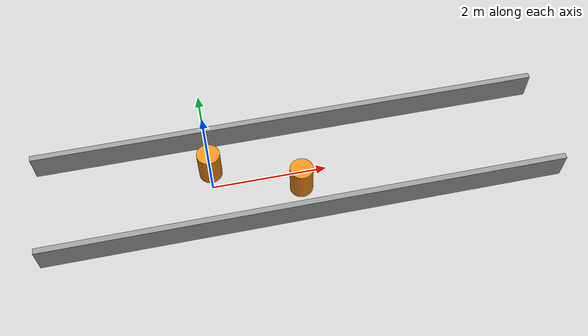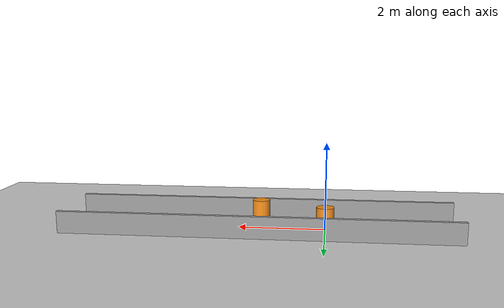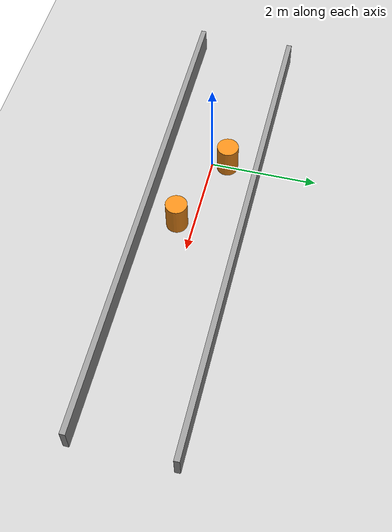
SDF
<sdf version="1.6">
 <world name="dwa_corridor">
  <include><uri>model://ground_plane</uri></include>
  <include><uri>model://sun</uri></include>
  <physics type="ode">
   <real_time_update_rate>1000.0</real_time_update_rate>
   <max_step_size>0.001</max_step_size>
   <real_time_factor>1</real_time_factor>
  </physics>
  <scene><shadows>false</shadows></scene>
  <model name="wall_left">
   <static>true</static>
   <pose>1.5 0.9 0.25 0 0 0</pose>
   <link name="link">
    <collision name="collision"><geometry><box><size>9.0 0.1 0.5</size></box></geometry></collision>
    <visual name="visual">
     <geometry><box><size>9.0 0.1 0.5</size></box></geometry>
     <material>
      <script><uri>file://media/materials/scripts/gazebo.material</uri><name>Gazebo/Grey</name></script>
     </material>
    </visual>
   </link>
  </model>
  <model name="wall_right">
   <static>true</static>
   <pose>1.5 -0.9 0.25 0 0 0</pose>
   <link name="link">
    <collision name="collision"><geometry><box><size>9.0 0.1 0.5</size></box></geometry></collision>
    <visual name="visual">
     <geometry><box><size>9.0 0.1 0.5</size></box></geometry>
     <material>
      <script><uri>file://media/materials/scripts/gazebo.material</uri><name>Gazebo/Grey</name></script>
     </material>
    </visual>
   </link>
  </model>
  <model name="obstacle_a">
   <static>true</static>
   <pose>0.0 0.30 0.30 0 0 0</pose>
   <link name="link">
    <collision name="collision">
     <geometry><cylinder><radius>0.20</radius><length>0.6</length></cylinder></geometry>
    </collision>
    <visual name="visual">
     <geometry><cylinder><radius>0.20</radius><length>0.6</length></cylinder></geometry>
     <material>
      <script><uri>file://media/materials/scripts/gazebo.material</uri><name>Gazebo/Orange</name></script>
     </material>
    </visual>
   </link>
  </model>
  <model name="obstacle_b">
   <static>true</static>
   <pose>1.5 -0.30 0.30 0 0 0</pose>
   <link name="link">
    <collision name="collision">
     <geometry><cylinder><radius>0.20</radius><length>0.6</length></cylinder></geometry>
    </collision>
    <visual name="visual">
     <geometry><cylinder><radius>0.20</radius><length>0.6</length></cylinder></geometry>
     <material>
      <script><uri>file://media/materials/scripts/gazebo.material</uri><name>Gazebo/Orange</name></script>
     </material>
    </visual>
   </link>
  </model>
 </world>
</sdf>
